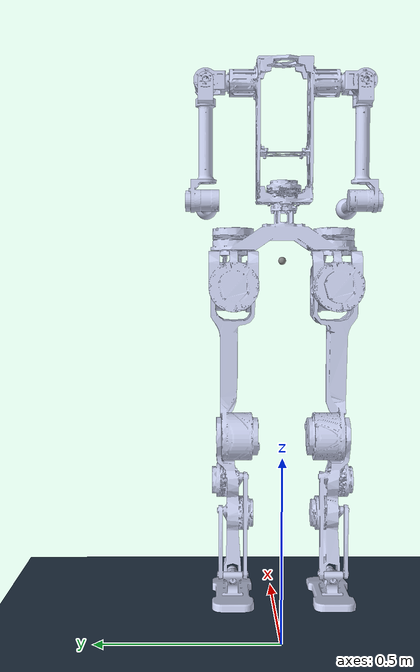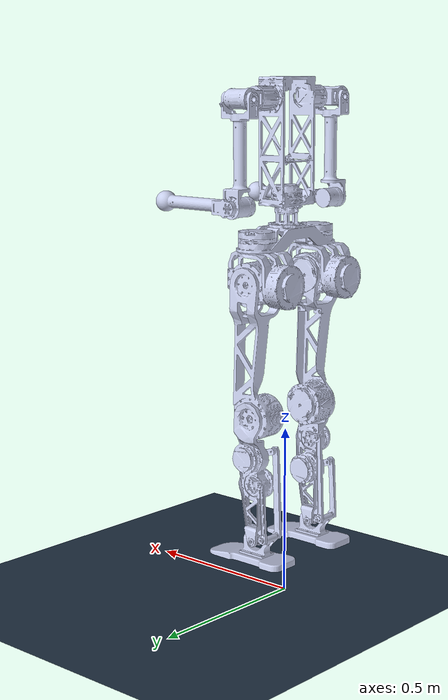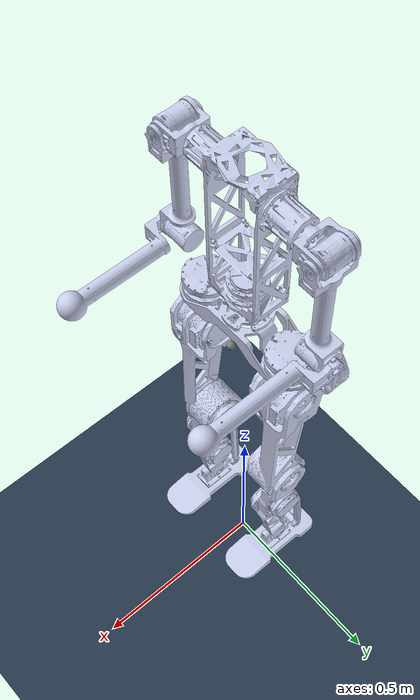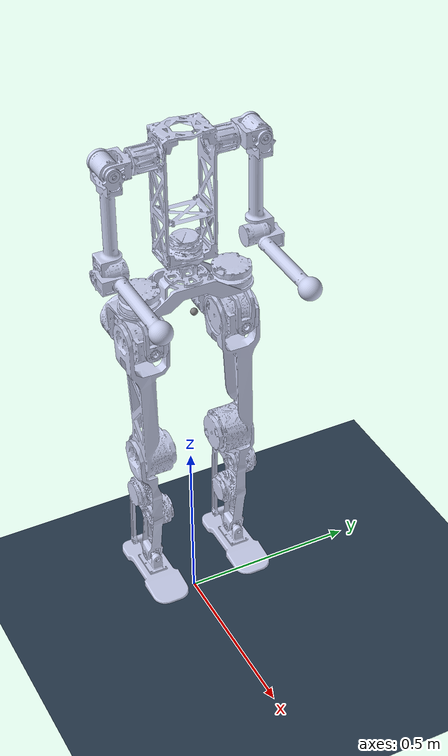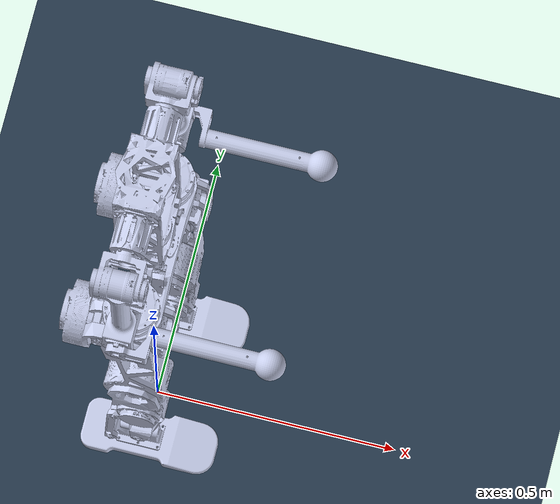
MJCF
<mujoco model="robot_zky">
  <compiler angle="radian" meshdir="../meshes" autolimits="true" />
  <option timestep="0.001" tolerance="1e-10" solver="Newton" jacobian="dense" cone="pyramidal" gravity="0 0 -9.81">
    <flag contact="enable" energy="enable" />
  </option>
  <size njmax="500" nconmax="1000" />
  <statistic meansize="0.12" extent="2.0" center="0 0 0.6" />
  <default>
    <light castshadow="false" />
    <geom condim="4" contype="1" friction="0.9 0.2 0.2" solref="0.002 1" solimp="0.95 0.99 0.001" conaffinity="15" />
    <default class="leg_joint_param">
      <joint limited="true" damping="0.01" frictionloss="0.01" armature="0.01" />
    </default>
    <default class="visual">
      <geom contype="0" conaffinity="0" group="1" type="mesh" />
    </default>
    <default class="collision">
      <geom contype="1" conaffinity="1" friction="1.0 0.3 0.3" margin="0.001" group="0" solref="0.05 2" solimp="0.9 0.95 0.001" />
    </default>
    <joint damping="0.1" frictionloss="0.02" armature="0.01" />
  </default>
  <asset>
    <texture name="texplane" type="2d" builtin="checker" rgb1=".2 .3 .4" rgb2=".1 0.15 0.2" width="512" height="512" mark="cross" markrgb=".8 .8 .8" />
    <material name="matplane" reflectance="0.3" texture="texplane" texrepeat="1 1" texuniform="true" />
    <mesh name="base_link" file="base_link.STL" />
    <mesh name="body_link" file="body_link.STL" />
    <mesh name="left_ankle_pitch_link" file="left_ankle_pitch_link.STL" />
    <mesh name="left_ankle_roll_link" file="left_ankle_roll_link.STL" />
    <mesh name="left_elbow_link" file="left_elbow_link.STL" />
    <mesh name="left_hip_pitch_link" file="left_hip_pitch_link.STL" />
    <mesh name="left_hip_roll_link" file="left_hip_roll_link.STL" />
    <mesh name="left_hip_yaw_link" file="left_hip_yaw_link.STL" />
    <mesh name="left_knee_link" file="left_knee_link.STL" />
    <mesh name="left_shoulder_pitch_link" file="left_shoulder_pitch_link.STL" />
    <mesh name="left_shoulder_roll_link" file="left_shoulder_roll_link.STL" />
    <mesh name="right_ankle_pitch_link" file="right_ankle_pitch_link.STL" />
    <mesh name="right_ankle_roll_link" file="right_ankle_roll_link.STL" />
    <mesh name="right_elbow_link" file="right_elbow_link.STL" />
    <mesh name="right_hip_pitch_link" file="right_hip_pitch_link.STL" />
    <mesh name="right_hip_roll_link" file="right_hip_roll_link.STL" />
    <mesh name="right_hip_yaw_link" file="right_hip_yaw_link.STL" />
    <mesh name="right_knee_link" file="right_knee_link.STL" />
    <mesh name="right_shoulder_pitch_link" file="right_shoulder_pitch_link.STL" />
    <mesh name="right_shoulder_roll_link" file="right_shoulder_roll_link.STL" />
  </asset>
  <worldbody>
    <light directional="true" diffuse=".4 .4 .4" specular="0.1 0.1 0.1" pos="0 0 5.0" dir="0 0 -1" castshadow="false" />
    <light directional="true" diffuse=".6 .6 .6" specular="0.2 0.2 0.2" pos="0 0 4" dir="0 0 -1" />
    <geom name="ground" type="plane" size="0 0 1" pos="0 0 0" quat="1 0 0 0" material="matplane" condim="3" conaffinity="0" density="0" contype="1" friction="1.0 0.3 0.3" solref="0.02 1" solimp="0.90 0.95 0.001 0.5 2" />
    <body name="base_link" pos="0 0 1.1">
      <inertial pos="-9.4e-05 0.0051 -0.026075" quat="-0.4994281468 -0.4994220312 0.5005757579 -0.5005727436" mass="3.82" diaginertia="0.06145972509 0.05860241491 0.005831265995" />
      <joint name="floating_world_joint" type="free" limited="false" />
      <geom type="mesh" contype="0" conaffinity="0" group="1" density="0" rgba="0.792156862745098 0.819607843137255 0.933333333333333 1" mesh="base_link" name="base_link_visual" />
      <geom type="mesh" contype="0" conaffinity="1" group="3" density="0" rgba="0.2 0.8 0.2 0.0" mesh="base_link" name="base_link_collision" condim="3" friction="1.0 0.3 0.3" margin="0.0" solref="0.02 1" solimp="0.90 0.95 0.001 0.5 2" />
      <site name="imu_in_pelvis" size="0.01" pos="0.04525 0 -0.08339" />
      <body name="left_hip_yaw_link" pos="0.000574709908 0.1299999994 -0.0535">
        <inertial pos="-0.08112070991 0.001055000552 -0.076881" quat="0.918187684 -0.001420593595 0.3961274422 -0.003522538712" mass="2.015" diaginertia="0.008527840731 0.008366929668 0.003898039201" />
        <joint name="left_hip_yaw_joint" type="hinge" pos="0 0 0" axis="0 0 -1" range="-1.79 1.79" />
        <geom type="mesh" contype="0" conaffinity="0" group="1" density="0" rgba="0.792156862745098 0.819607843137255 0.933333333333333 1" mesh="left_hip_yaw_link" name="left_hip_yaw_link_visual" />
        <geom type="mesh" contype="0" conaffinity="1" group="3" density="0" rgba="0.2 0.8 0.2 0.0" mesh="left_hip_yaw_link" name="left_hip_yaw_link_collision" condim="3" friction="1.0 0.3 0.3" margin="0.0" solref="0.02 1" solimp="0.90 0.95 0.001 0.5 2" />
        <body name="left_hip_roll_link" pos="-0.077 0 -0.097">
          <inertial pos="0.07308729009 0.004282000552 0.003414" quat="0.5198433275 -0.5077498723 0.4876751886 -0.4838655727" mass="2.835" diaginertia="0.008221590605 0.007052292946 0.005429712848" />
          <joint name="left_hip_roll_joint" type="hinge" pos="0 0 0" axis="1 0 0" range="-3.1416 3.1416" />
          <geom type="mesh" contype="0" conaffinity="0" group="1" density="0" rgba="0.792156862745098 0.819607843137255 0.933333333333333 1" mesh="left_hip_roll_link" name="left_hip_roll_link_visual" />
          <geom type="mesh" contype="0" conaffinity="1" group="3" density="0" rgba="0.2 0.8 0.2 0.0" mesh="left_hip_roll_link" name="left_hip_roll_link_collision" condim="3" friction="1.0 0.3 0.3" margin="0.0" solref="0.02 1" solimp="0.90 0.95 0.001 0.5 2" />
          <body name="left_hip_pitch_link" pos="0.077 0.0355 0">
            <inertial pos="0.001518290092 -0.03466599945 -0.27194" quat="0.7119481558 -0.03068596541 -0.02073749782 -0.7012546978" mass="3.85" diaginertia="0.09886623064 0.09151927668 0.007853912584" />
            <joint name="left_hip_pitch_joint" type="hinge" pos="0 0 0" axis="0 -1 0" range="-1.39 3.7" />
            <geom type="mesh" contype="0" conaffinity="0" group="1" density="0" rgba="0.792156862745098 0.819607843137255 0.933333333333333 1" mesh="left_hip_pitch_link" name="left_hip_pitch_link_visual" />
            <geom type="mesh" contype="0" conaffinity="1" group="3" density="0" rgba="0.2 0.8 0.2 0.0" mesh="left_hip_pitch_link" name="left_hip_pitch_link_collision" condim="3" friction="1.0 0.3 0.3" margin="0.0" solref="0.02 1" solimp="0.90 0.95 0.001 0.5 2" />
            <body name="left_knee_link" pos="0 -0.0155 -0.3900000001">
              <inertial pos="0.001965290092 -0.01032599945 -0.1509989999" quat="0.04151381703 0.7510147352 0.6548451329 -0.07369750613" mass="2.445" diaginertia="0.022144634 0.02146924423 0.003105273666" />
              <joint name="left_knee_joint" type="hinge" pos="0 0 0" axis="0 -1 0" range="-2.7 2.05" />
              <geom type="mesh" contype="0" conaffinity="0" group="1" density="0" rgba="0.792156862745098 0.819607843137255 0.933333333333333 1" mesh="left_knee_link" name="left_knee_link_visual" />
              <geom type="mesh" contype="0" conaffinity="1" group="3" density="0" rgba="0.2 0.8 0.2 0.0" mesh="left_knee_link" name="left_knee_link_collision" condim="3" friction="1.0 0.3 0.3" margin="0.0" solref="0.02 1" solimp="0.90 0.95 0.001 0.5 2" />
              <body name="left_ankle_pitch_link" pos="0 -0.02 -0.37">
                <inertial pos="-0.001504709708 0.005059996852 0.002999941379" quat="0.7071066043 -0.7071065766 0.000517741179 0.0005209592705" mass="0.056" diaginertia="1.504308415e-05 1.497534108e-05 6.774311987e-08" />
                <joint name="left_ankle_pitch_joint" type="hinge" pos="0 0 0" axis="0 1 0" range="-1.0 1.0" />
                <geom type="mesh" contype="0" conaffinity="0" group="1" density="0" rgba="0.792156862745098 0.819607843137255 0.933333333333333 1" mesh="left_ankle_pitch_link" name="left_ankle_pitch_link_visual" />
                <geom type="mesh" contype="0" conaffinity="1" group="3" density="0" rgba="0.2 0.8 0.2 0.0" mesh="left_ankle_pitch_link" name="left_ankle_pitch_link_collision" condim="3" friction="1.0 0.3 0.3" margin="0.0" solref="0.02 1" solimp="0.90 0.95 0.001 0.5 2" />
                <body name="left_ankle_roll_link" pos="0 0 0">
                  <inertial pos="0.002019142892 0.005060062152 -0.03357938082" quat="-8.473719918e-07 0.7338781074 -5.768876402e-08 0.6792811815" mass="0.655" diaginertia="0.003459399433 0.003272114 0.0007054795668" />
                  <joint name="left_ankle_roll_joint" type="hinge" pos="0 0 0" axis="1 0 0" range="-0.8 0.8" />
                  <geom type="mesh" contype="0" conaffinity="0" group="1" density="0" rgba="0.792156862745098 0.819607843137255 0.933333333333333 1" mesh="left_ankle_roll_link" name="left_ankle_roll_link_visual" />
                  <geom type="mesh" contype="0" conaffinity="1" group="3" density="0" rgba="0.2 0.8 0.2 0.0" mesh="left_ankle_roll_link" name="left_ankle_roll_link_collision" condim="3" friction="1.0 0.3 0.3" margin="0.0" solref="0.02 1" solimp="0.90 0.95 0.001 0.5 2" />
                </body>
              </body>
            </body>
          </body>
        </body>
      </body>
      <body name="right_hip_yaw_link" pos="0.00057471 -0.13 -0.0535">
        <inertial pos="-0.08112071 0.001065 -0.076881" quat="-0.003498991376 0.396127433 -0.001409349816 0.9181877954" mass="2.015" diaginertia="0.008527841074 0.008366930798 0.003898039727" />
        <joint name="right_hip_yaw_joint" type="hinge" pos="0 0 0" axis="0 0 -1" range="-1.79 1.79" />
        <geom type="mesh" contype="0" conaffinity="0" group="1" density="0" rgba="0.792156862745098 0.819607843137255 0.933333333333333 1" mesh="right_hip_yaw_link" name="right_hip_yaw_link_visual" />
        <geom type="mesh" contype="0" conaffinity="1" group="3" density="0" rgba="0.2 0.8 0.2 0.0" mesh="right_hip_yaw_link" name="right_hip_yaw_link_collision" condim="3" friction="1.0 0.3 0.3" margin="0.0" solref="0.02 1" solimp="0.90 0.95 0.001 0.5 2" />
        <body name="right_hip_roll_link" pos="-0.077 0 -0.097">
          <inertial pos="0.07308729 -0.002162 0.002586" quat="-0.4838717456 0.4876682273 -0.507742231 0.5198515757" mass="2.835" diaginertia="0.008221595207 0.007052335213 0.005429711579" />
          <joint name="right_hip_roll_joint" type="hinge" pos="0 0 0" axis="1 0 0" range="-3.1416 3.1416" />
          <geom type="mesh" contype="0" conaffinity="0" group="1" density="0" rgba="0.792156862745098 0.819607843137255 0.933333333333333 1" mesh="right_hip_roll_link" name="right_hip_roll_link_visual" />
          <geom type="mesh" contype="0" conaffinity="1" group="3" density="0" rgba="0.2 0.8 0.2 0.0" mesh="right_hip_roll_link" name="right_hip_roll_link_collision" condim="3" friction="1.0 0.3 0.3" margin="0.0" solref="0.02 1" solimp="0.90 0.95 0.001 0.5 2" />
          <body name="right_hip_pitch_link" pos="0.077 -0.0355 0">
            <inertial pos="-0.00778371 0.036786 -0.271888" quat="0.7006679848 0.009325694419 0.04192293534 -0.7121937054" mass="3.85" diaginertia="0.09885973023 0.09151929553 0.007853825343" />
            <joint name="right_hip_pitch_joint" type="hinge" pos="0 0 0" axis="0 1 0" range="-3.8 1.39" />
            <geom type="mesh" contype="0" conaffinity="0" group="1" density="0" rgba="0.792156862745098 0.819607843137255 0.933333333333333 1" mesh="right_hip_pitch_link" name="right_hip_pitch_link_visual" />
            <geom type="mesh" contype="0" conaffinity="1" group="3" density="0" rgba="0.2 0.8 0.2 0.0" mesh="right_hip_pitch_link" name="right_hip_pitch_link_collision" condim="3" friction="1.0 0.3 0.3" margin="0.0" solref="0.02 1" solimp="0.90 0.95 0.001 0.5 2" />
            <body name="right_knee_link" pos="0 0.0155 -0.39">
              <inertial pos="0.00196629 0.014446 -0.150999" quat="-0.07369948447 0.6548496127 0.7510107876 0.04151105445" mass="2.445" diaginertia="0.02214484369 0.02146948648 0.003105251731" />
              <joint name="right_knee_joint" type="hinge" pos="0 0 0" axis="0 1 0" range="-2.05 2.25" />
              <geom type="mesh" contype="0" conaffinity="0" group="1" density="0" rgba="0.792156862745098 0.819607843137255 0.933333333333333 1" mesh="right_knee_link" name="right_knee_link_visual" />
              <geom type="mesh" contype="0" conaffinity="1" group="3" density="0" rgba="0.2 0.8 0.2 0.0" mesh="right_knee_link" name="right_knee_link_collision" condim="3" friction="1.0 0.3 0.3" margin="0.0" solref="0.02 1" solimp="0.90 0.95 0.001 0.5 2" />
              <body name="right_ankle_pitch_link" pos="0 0.02 -0.3699999999">
                <inertial pos="-0.0015047098 -0.0029399765 0.003000055816" quat="0.7071066028 -0.7071066067 0.0004991747422 0.0004998551511" mass="0.058" diaginertia="1.513254106e-05 1.507890994e-05 6.877881296e-08" />
                <joint name="right_ankle_pitch_joint" type="hinge" pos="0 0 0" axis="0 -1 0" range="-1.0 1.0" />
                <geom type="mesh" contype="0" conaffinity="0" group="1" density="0" rgba="0.792156862745098 0.819607843137255 0.933333333333333 1" mesh="right_ankle_pitch_link" name="right_ankle_pitch_link_visual" />
                <geom type="mesh" contype="0" conaffinity="1" group="3" density="0" rgba="0.2 0.8 0.2 0.0" mesh="right_ankle_pitch_link" name="right_ankle_pitch_link_collision" condim="3" friction="1.0 0.3 0.3" margin="0.0" solref="0.02 1" solimp="0.90 0.95 0.001 0.5 2" />
                <body name="right_ankle_roll_link" pos="0 0 0">
                  <inertial pos="0.0020305194 -0.0029399097 -0.03369348518" quat="0.00177056762 0.7338176789 0.001935769251 0.6793413958" mass="0.653" diaginertia="0.003459228118 0.003269251773 0.000702675109" />
                  <joint name="right_ankle_roll_joint" type="hinge" pos="0 0 0" axis="1 0 0" range="-0.8 0.8" />
                  <geom type="mesh" contype="0" conaffinity="0" group="1" density="0" rgba="0.792156862745098 0.819607843137255 0.933333333333333 1" mesh="right_ankle_roll_link" name="right_ankle_roll_link_visual" />
                  <geom type="mesh" contype="0" conaffinity="1" group="3" density="0" rgba="0.2 0.8 0.2 0.0" mesh="right_ankle_roll_link" name="right_ankle_roll_link_collision" condim="3" friction="1.0 0.3 0.3" margin="0.0" solref="0.02 1" solimp="0.90 0.95 0.001 0.5 2" />
                </body>
              </body>
            </body>
          </body>
        </body>
      </body>
      <body name="body_link" pos="0.0005747095796 0 0.059">
        <inertial pos="-7.598215791e-05 9.073483775e-06 0.1356529796" quat="4.112221785e-05 3.282303974e-05 -5.179464622e-05 0.9999999973" mass="4.678667824" diaginertia="0.1030454005 0.08601700057 0.02230639897" />
        <joint name="body_joint" type="hinge" pos="0 0 0" axis="0 0 1" range="-1.57 1.57" />
        <geom type="mesh" contype="0" conaffinity="0" group="1" density="0" rgba="0.792156862745098 0.819607843137255 0.933333333333333 1" mesh="body_link" name="body_link_visual" />
        <geom type="mesh" contype="0" conaffinity="1" group="3" density="0" rgba="0.2 0.8 0.2 0.0" mesh="body_link" name="body_link_collision" condim="3" friction="1.0 0.3 0.3" margin="0.0" solref="0.02 1" solimp="0.90 0.95 0.001 0.5 2" />
        <body name="left_shoulder_pitch_link" pos="0 0.14 0.305">
          <inertial pos="-0.007789173252 0.0503621348 0.0001103037389" quat="0.6838187627 0.1939846728 0.6779091349 -0.1876194324" mass="0.6138355206" diaginertia="0.0007334268975 0.000581816124 0.0004543569786" />
          <joint name="left_shoulder_pitch_joint" type="hinge" pos="0 0 0" axis="0 -1 0" range="-1.57 2.4" />
          <geom type="mesh" contype="0" conaffinity="0" group="1" density="0" rgba="0.792156862745098 0.819607843137255 0.933333333333333 1" mesh="left_shoulder_pitch_link" name="left_shoulder_pitch_link_visual" />
          <geom type="mesh" contype="0" conaffinity="1" group="3" density="0" rgba="0.2 0.8 0.2 0.0" mesh="left_shoulder_pitch_link" name="left_shoulder_pitch_link_collision" condim="3" friction="1.0 0.3 0.3" margin="0.0" solref="0.02 1" solimp="0.90 0.95 0.001 0.5 2" />
          <body name="left_shoulder_roll_link" pos="-0.038 0.06 0">
            <inertial pos="0.0369671482 0.007353545951 -0.2036275672" quat="-0.01181443823 0.709598593 0.7041230863 0.02325801563" mass="0.8899284227" diaginertia="0.01177417842 0.01161681826 0.0006953033185" />
            <joint name="left_shoulder_roll_joint" type="hinge" pos="0 0 0" axis="1 0 0" range="-1.57 1.57" />
            <geom type="mesh" contype="0" conaffinity="0" group="1" density="0" rgba="0.792156862745098 0.819607843137255 0.933333333333333 1" mesh="left_shoulder_roll_link" name="left_shoulder_roll_link_visual" />
            <geom type="mesh" contype="0" conaffinity="1" group="3" density="0" rgba="0.2 0.8 0.2 0.0" mesh="left_shoulder_roll_link" name="left_shoulder_roll_link_collision" condim="3" friction="1.0 0.3 0.3" margin="0.0" solref="0.02 1" solimp="0.90 0.95 0.001 0.5 2" />
            <body name="left_elbow_link" pos="0.038 0.035 -0.295">
              <inertial pos="0.1088640994 -0.02040532575 -3.954655343e-08" quat="0.7052657373 -0.05099254573 -0.7052657373 -0.05099254573" mass="0.2950184113" diaginertia="0.0027363 0.002686127439 0.0001284725605" />
              <joint name="left_elbow_joint" type="hinge" pos="0 0 0" axis="0 -1 0" range="-3.1 1.57" />
              <geom type="mesh" contype="0" conaffinity="0" group="1" density="0" rgba="0.792156862745098 0.819607843137255 0.933333333333333 1" mesh="left_elbow_link" name="left_elbow_link_visual" />
              <geom type="mesh" contype="0" conaffinity="1" group="3" density="0" rgba="0.2 0.8 0.2 0.0" mesh="left_elbow_link" name="left_elbow_link_collision" condim="3" friction="1.0 0.3 0.3" margin="0.0" solref="0.02 1" solimp="0.90 0.95 0.001 0.5 2" />
            </body>
          </body>
        </body>
        <body name="right_shoulder_pitch_link" pos="0 -0.14 0.305">
          <inertial pos="-0.007752273149 -0.05025935177 0.0001114446423" quat="0.6830036826 -0.1970196288 0.6770330436 0.190566244" mass="0.6073566998" diaginertia="0.0007260272471 0.0005754771903 0.0004495955626" />
          <joint name="right_shoulder_pitch_joint" type="hinge" pos="0 0 0" axis="0 1 0" range="-2.6 1.57" />
          <geom type="mesh" contype="0" conaffinity="0" group="1" density="0" rgba="0.792156862745098 0.819607843137255 0.933333333333333 1" mesh="right_shoulder_pitch_link" name="right_shoulder_pitch_link_visual" />
          <geom type="mesh" contype="0" conaffinity="1" group="3" density="0" rgba="0.2 0.8 0.2 0.0" mesh="right_shoulder_pitch_link" name="right_shoulder_pitch_link_collision" condim="3" friction="1.0 0.3 0.3" margin="0.0" solref="0.02 1" solimp="0.90 0.95 0.001 0.5 2" />
          <body name="right_shoulder_roll_link" pos="-0.038 -0.06 0">
            <inertial pos="0.03696074538 -0.007250273758 -0.2030649202" quat="0.02307222075 0.7041757449 0.7095558084 -0.01160808717" mass="0.8844812264" diaginertia="0.01172476204 0.01156781457 0.0006928233941" />
            <joint name="right_shoulder_roll_joint" type="hinge" pos="0 0 0" axis="1 0 0" range="-1.57 1.57" />
            <geom type="mesh" contype="0" conaffinity="0" group="1" density="0" rgba="0.792156862745098 0.819607843137255 0.933333333333333 1" mesh="right_shoulder_roll_link" name="right_shoulder_roll_link_visual" />
            <geom type="mesh" contype="0" conaffinity="1" group="3" density="0" rgba="0.2 0.8 0.2 0.0" mesh="right_shoulder_roll_link" name="right_shoulder_roll_link_collision" condim="3" friction="1.0 0.3 0.3" margin="0.0" solref="0.02 1" solimp="0.90 0.95 0.001 0.5 2" />
            <body name="right_elbow_link" pos="0.038 -0.035 -0.295">
              <inertial pos="0.1088642491 0.02040535966 -6.987272178e-09" quat="0.7052657373 0.05099254573 -0.7052657373 0.05099254573" mass="0.2950177493" diaginertia="0.0027363 0.002686127439 0.0001284725605" />
              <joint name="right_elbow_joint" type="hinge" pos="0 0 0" axis="0 1 0" range="-1.57 3.1" />
              <geom type="mesh" contype="0" conaffinity="0" group="1" density="0" rgba="0.792156862745098 0.819607843137255 0.933333333333333 1" mesh="right_elbow_link" name="right_elbow_link_visual" />
              <geom type="mesh" contype="0" conaffinity="1" group="3" density="0" rgba="0.2 0.8 0.2 0.0" mesh="right_elbow_link" name="right_elbow_link_collision" condim="3" friction="1.0 0.3 0.3" margin="0.0" solref="0.02 1" solimp="0.90 0.95 0.001 0.5 2" />
            </body>
          </body>
        </body>
      </body>
    </body>
  </worldbody>
  <actuator>
    <motor name="left_hip_yaw_joint" joint="left_hip_yaw_joint" />
    <motor name="left_hip_roll_joint" joint="left_hip_roll_joint" />
    <motor name="left_hip_pitch_joint" joint="left_hip_pitch_joint" />
    <motor name="left_knee_joint" joint="left_knee_joint" />
    <motor name="left_ankle_pitch_joint" joint="left_ankle_pitch_joint" />
    <motor name="left_ankle_roll_joint" joint="left_ankle_roll_joint" />
    <motor name="right_hip_yaw_joint" joint="right_hip_yaw_joint" />
    <motor name="right_hip_roll_joint" joint="right_hip_roll_joint" />
    <motor name="right_hip_pitch_joint" joint="right_hip_pitch_joint" />
    <motor name="right_knee_joint" joint="right_knee_joint" />
    <motor name="right_ankle_pitch_joint" joint="right_ankle_pitch_joint" />
    <motor name="right_ankle_roll_joint" joint="right_ankle_roll_joint" />
    <motor name="body_joint" joint="body_joint" />
    <motor name="left_shoulder_pitch_joint" joint="left_shoulder_pitch_joint" />
    <motor name="left_shoulder_roll_joint" joint="left_shoulder_roll_joint" />
    <motor name="left_elbow_joint" joint="left_elbow_joint" />
    <motor name="right_shoulder_pitch_joint" joint="right_shoulder_pitch_joint" />
    <motor name="right_shoulder_roll_joint" joint="right_shoulder_roll_joint" />
    <motor name="right_elbow_joint" joint="right_elbow_joint" />
  </actuator>
  <sensor>
    <framequat name="orientation" objtype="site" noise="0.001" objname="imu_in_pelvis" />
    <framepos name="position" objtype="site" noise="0.001" objname="imu_in_pelvis" />
    <gyro name="angular-velocity" site="imu_in_pelvis" noise="0.005" cutoff="34.9" />
    <velocimeter name="linear-velocity" site="imu_in_pelvis" noise="0.001" cutoff="30" />
    <accelerometer name="linear-acceleration" site="imu_in_pelvis" noise="0.005" cutoff="157" />
    <magnetometer name="magnetometer" site="imu_in_pelvis" />
  </sensor>
</mujoco>
